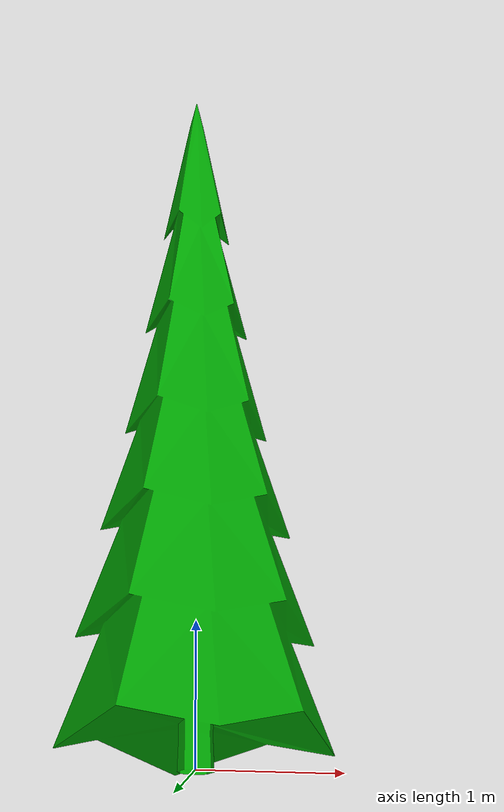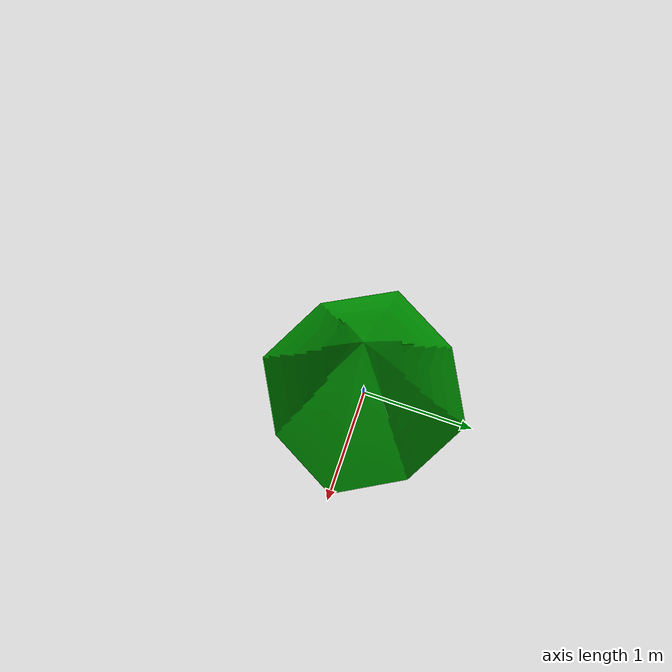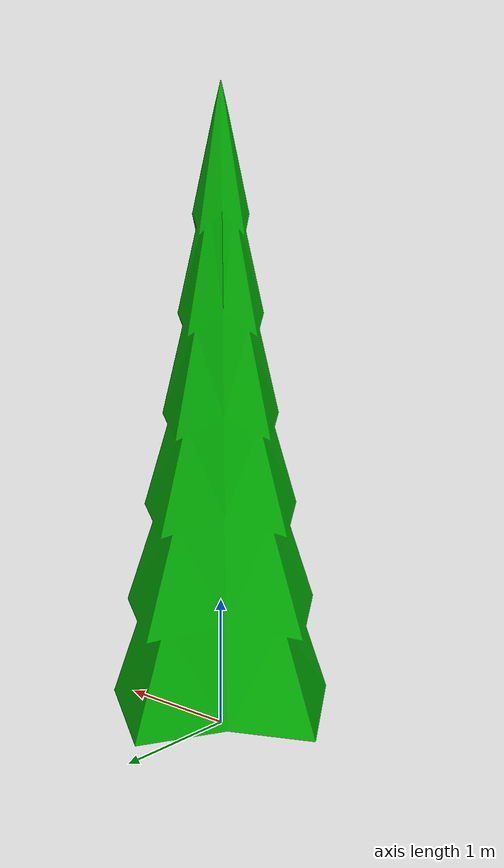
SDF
<?xml version="1.0"?>
<sdf version="1.5">
  <model name="smalltree_model">
    <static>
      true
    </static>
    <link name="smalltree_link">
      <inertial>
        <mass>0.390</mass>
        <inertia>
          <ixx>0.00058</ixx>
          <ixy>0</ixy>
          <ixz>0</ixz>
          <iyy>0.00058</iyy>
          <iyz>0</iyz>
          <izz>0.00019</izz>
        </inertia>
      </inertial>
      <collision name="smalltree_collision">
        <geometry>
          <mesh>
            <uri>model://smalltree/meshes/smalltree.dae</uri>
          </mesh>
        </geometry>
        <surface>
          <friction>
            <ode>
              <mu>1.0</mu>
              <mu2>1.0</mu2>
            </ode>
          </friction>
          <contact>
            <ode>
              <kp>10000000.0</kp>
              <kd>1.0</kd>
              <min_depth>0.001</min_depth>
              <max_vel>0.1</max_vel>
            </ode>
          </contact>
        </surface>
      </collision>
      <visual name="smalltree_visual">
        <geometry>
          <mesh>
            <uri>model://smalltree/meshes/smalltree.dae</uri>
          </mesh>
        </geometry>
      </visual>
    </link>
  </model>
</sdf>
